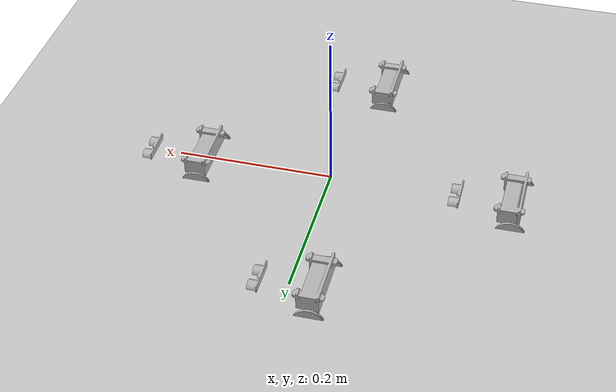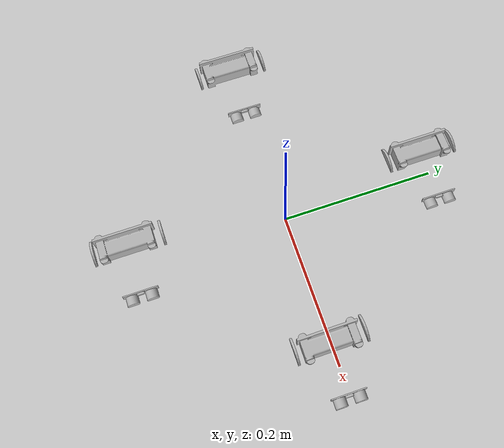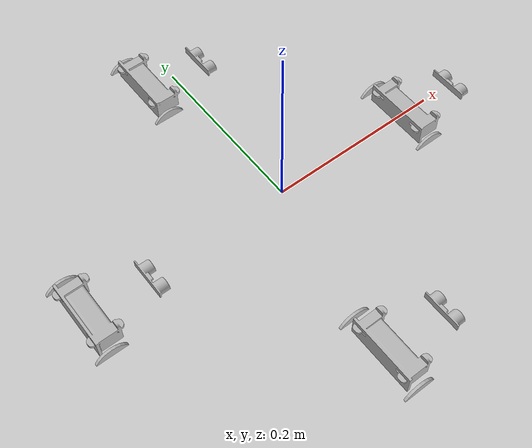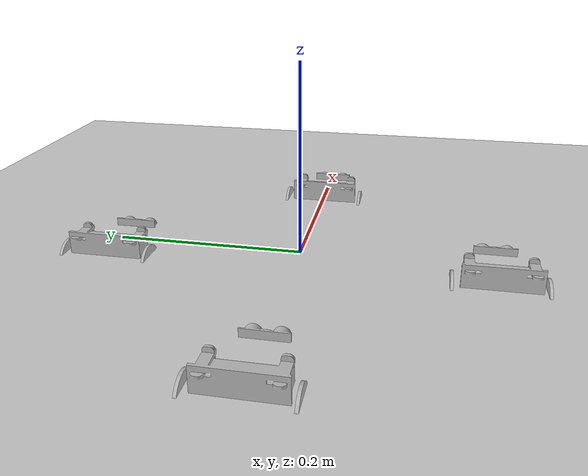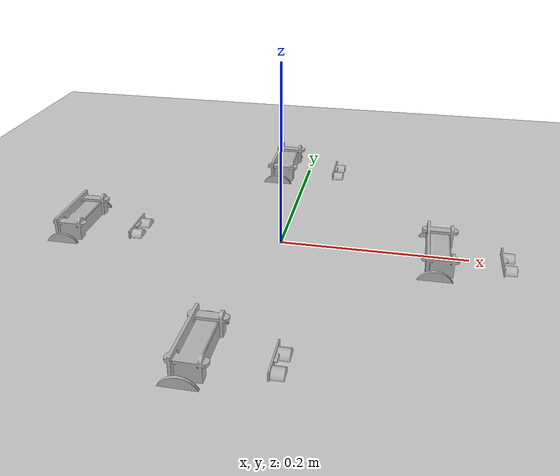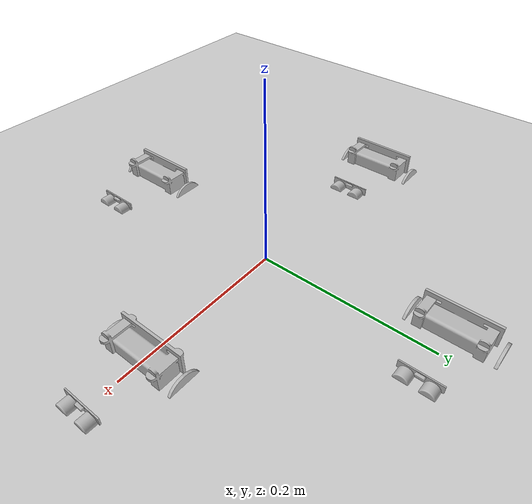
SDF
<?xml version="1.0"?>
<sdf version="1.4">
  <world name="default">

    <!-- Ground Plane -->
    <include>
      <uri>model://ground_plane</uri>
    </include>

    <model name="rodi0">
      <include>
        <uri>model://rodi</uri>
        <pose>0.2 0 0 0 0 0</pose>
      </include>
      <plugin name="model_rodi" filename="libmodel_rodi.so">
        <port>9996</port>
      </plugin>
    </model>

    <model name="rodi1">
      <include>
        <uri>model://rodi</uri>
        <pose>-0.2 0 0 0 0 0</pose>
      </include>
      <plugin name="model_rodi" filename="libmodel_rodi.so">
        <port>9997</port>
      </plugin>
    </model>

    <model name="rodi2">
      <include>
        <uri>model://rodi</uri>
        <pose>0 0.2 0 0 0 0</pose>
      </include>
      <plugin name="model_rodi" filename="libmodel_rodi.so">
        <port>9998</port>
      </plugin>
    </model>

    <model name="rodi3">
      <include>
        <uri>model://rodi</uri>
        <pose>0 -0.2 0 0 0 0</pose>
      </include>
      <plugin name="model_rodi" filename="libmodel_rodi.so">
        <port>9999</port>
      </plugin>
    </model>

    <light name='user_directional_light_0' type='directional'>
      <pose frame=''>0.047698 -0.083421 1 0 -0 0</pose>
      <diffuse>0.5 0.5 0.5 1</diffuse>
      <specular>0.1 0.1 0.1 1</specular>
      <direction>0.1 0.1 -0.9</direction>
      <attenuation>
        <range>20</range>
        <constant>0.5</constant>
        <linear>0.01</linear>
        <quadratic>0.001</quadratic>
      </attenuation>
      <cast_shadows>1</cast_shadows>
    </light>

    <gui fullscreen='0'>
      <camera name='user_camera'>
        <pose frame=''>0.6 -0.5 0.25 0 0.275643 2.35619</pose>
        <view_controller>orbit</view_controller>
        <projection_type>perspective</projection_type>
      </camera>
    </gui>

  </world>
</sdf>

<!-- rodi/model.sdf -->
<sdf version='1.4'>
  <model name="rodi">
    <static>false</static>
    <link name='base_link'>
      <pose>0 0 0 0 0 0</pose>
      <inertial>
        <mass>0.0200</mass>
        <inertia>
          <ixx>1.4506666666666668e-05</ixx>
          <ixy>0</ixy>
          <ixz>0</ixz>
          <iyy>2.050666666666667e-05</iyy>
          <iyz>0</iyz>
          <izz>2.7333333333333338e-05</izz>
        </inertia>
      </inertial>
      <collision name='base_link_collision'>
        <pose frame=''>0 0 0.0045 0 0 0</pose>
        <geometry>
          <box>
            <size>0.1 0.08 .048</size>
          </box>
        </geometry>
        <surface>
          <friction>
            <ode>
              <mu>1</mu>
              <mu2>1</mu2>
              <fdir1>0 0 0</fdir1>
              <slip1>0</slip1>
              <slip2>0</slip2>
            </ode>
          </friction>
        </surface>
      </collision>

      <visual name='base_link_visual'>
        <pose>0.3 -0.93 -0.0195 0 0 1.57079632679</pose>
        <geometry>
          <mesh>
            <scale>0.001 0.001 0.001</scale>
            <uri>model://rodi/meshes/rodi_base.stl</uri>
          </mesh>
        </geometry>
      </visual>
      <sensor name="sonar" type="sonar">
        <pose>0.04 0 0 0 -1.7 0</pose>
        <sonar>
          <min>0.2</min>
          <max>1.0</max>
          <!-- FIXME: this is an estimated value -->
          <radius>0.5</radius>
        </sonar>
        <always_on>1</always_on>
        <update_rate>30</update_rate>
        <visualize>false</visualize>
      </sensor>

      <sensor name="lightsensor" type="camera">
        <pose>0.04 0 -0.01 0 0 0</pose>
        <camera>
          <horizontal_fov>1.047</horizontal_fov>
          <image>
            <width>600</width>
            <height>600</height>
            <format>R8G8B8</format>
          </image>
          <clip>
            <near>0.1</near>
            <far>100</far>
          </clip>
        </camera>
        <visualize>true</visualize>
        <always_on>1</always_on>
        <update_rate>1</update_rate>
      </sensor>

      <sensor name="irsensor" type="camera">
        <pose>-0.02 0 -0.02 0 1.5 0</pose>
        <camera>
          <horizontal_fov>1.047</horizontal_fov>
          <image>
            <width>100</width>
            <height>100</height>
            <format>R8G8B8</format>
          </image>
          <clip>
            <near>0.1</near>
            <far>0.3</far>
          </clip>
        </camera>
        <visualize>true</visualize>
        <always_on>1</always_on>
        <update_rate>1</update_rate>
      </sensor>
    </link>

    <joint type="fixed" name="ball_caster_joint">
      <parent>base_link</parent>
      <child>ball_caster_link</child>
      <axis>
        <xyz>0 0 1</xyz>
      </axis>
    </joint>

    <link name="ball_caster_link">
      <pose>0.038 0 -0.02 0 0 0</pose>
      <inertial>
        <mass>0.0184</mass>
        <inertia>
          <ixx>1.6693515000000002e-07</ixx>
          <ixy>0</ixy>
          <ixz>0</ixz>
          <iyy>1.6693515000000002e-07</iyy>
          <iyz>0</iyz>
          <izz>1.6693515000000002e-07</izz>
        </inertia>
      </inertial>
      <collision name='ball_caster_collision'>
        <geometry>
          <sphere>
            <radius>.0047625</radius>
          </sphere>
        </geometry>
        <surface>
          <friction>
            <ode>
              <mu>1</mu>
              <mu2>1</mu2>
              <fdir1>0 0 0</fdir1>
              <slip1>0</slip1>
              <slip2>0</slip2>
            </ode>
          </friction>
        </surface>
      </collision>

      <visual name='ball_caster_visual'>
        <geometry>
          <sphere>
            <radius>.0047625</radius>
          </sphere>
        </geometry>
      </visual>
    </link>

    <link name="left_wheel">
      <pose>-0.035 0.045 -0.01 0 1.5707 1.5707</pose>
      <inertial>
        <mass>0.3795</mass>
        <inertia>
          <ixx>3.8234624999999996e-05</ixx>
          <ixy>0</ixy>
          <ixz>0</ixz>
          <iyy>3.8234624999999996e-05</iyy>
          <iyz>0</iyz>
          <izz>7.59e-05</izz>
        </inertia>
      </inertial>
      <collision name="collision">
        <geometry>
          <cylinder>
            <radius>.02</radius>
            <length>.003</length>
          </cylinder>
        </geometry>
        <surface>
          <friction>
            <ode>
              <mu>1</mu>
              <mu2>1</mu2>
              <fdir1>0 0 0</fdir1>
              <slip1>0</slip1>
              <slip2>0</slip2>
            </ode>
          </friction>
        </surface>
      </collision>

      <visual name="visual">
        <geometry>
          <cylinder>
            <radius>.02</radius>
            <length>.003</length>
          </cylinder>
        </geometry>
      </visual>
    </link>

    <link name="right_wheel">
      <pose>-0.035 -0.045 -0.01 0 1.5707 1.5707</pose>
      <inertial>
        <mass>0.3795</mass>
        <inertia>
          <ixx>3.8234624999999996e-05</ixx>
          <ixy>0</ixy>
          <ixz>0</ixz>
          <iyy>3.8234624999999996e-05</iyy>
          <iyz>0</iyz>
          <izz>7.59e-05</izz>
        </inertia>
      </inertial>
      <collision name="collision">
        <geometry>
          <cylinder>
            <radius>.02</radius>
            <length>.003</length>
          </cylinder>
        </geometry>
        <surface>
          <friction>
            <ode>
              <mu>1</mu>
              <mu2>1</mu2>
              <fdir1>0 0 0</fdir1>
              <slip1>0</slip1>
              <slip2>0</slip2>
            </ode>
          </friction>
        </surface>
      </collision>
      <visual name="visual">
        <geometry>
          <cylinder>
            <radius>.02</radius>
            <length>.003</length>
          </cylinder>
        </geometry>
      </visual>
    </link>

    <joint type="revolute" name="left_wheel_servo">
      <parent>base_link</parent>
      <child>left_wheel</child>
      <axis>
        <xyz>0 1 0</xyz>
      </axis>
    </joint>

    <joint type="revolute" name="right_wheel_servo">
      <parent>base_link</parent>
      <child>right_wheel</child>
      <axis>
        <xyz>0 1 0</xyz>
      </axis>
    </joint>

  </model>
</sdf>
